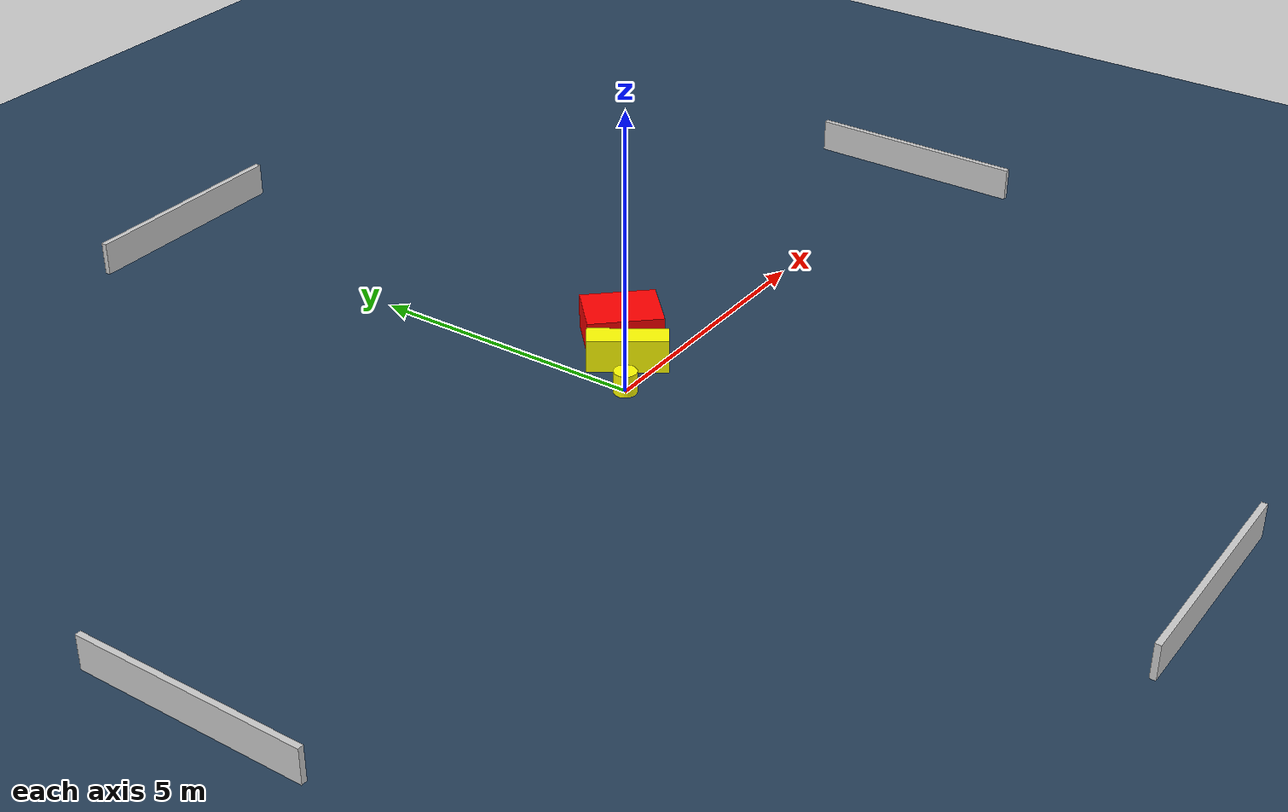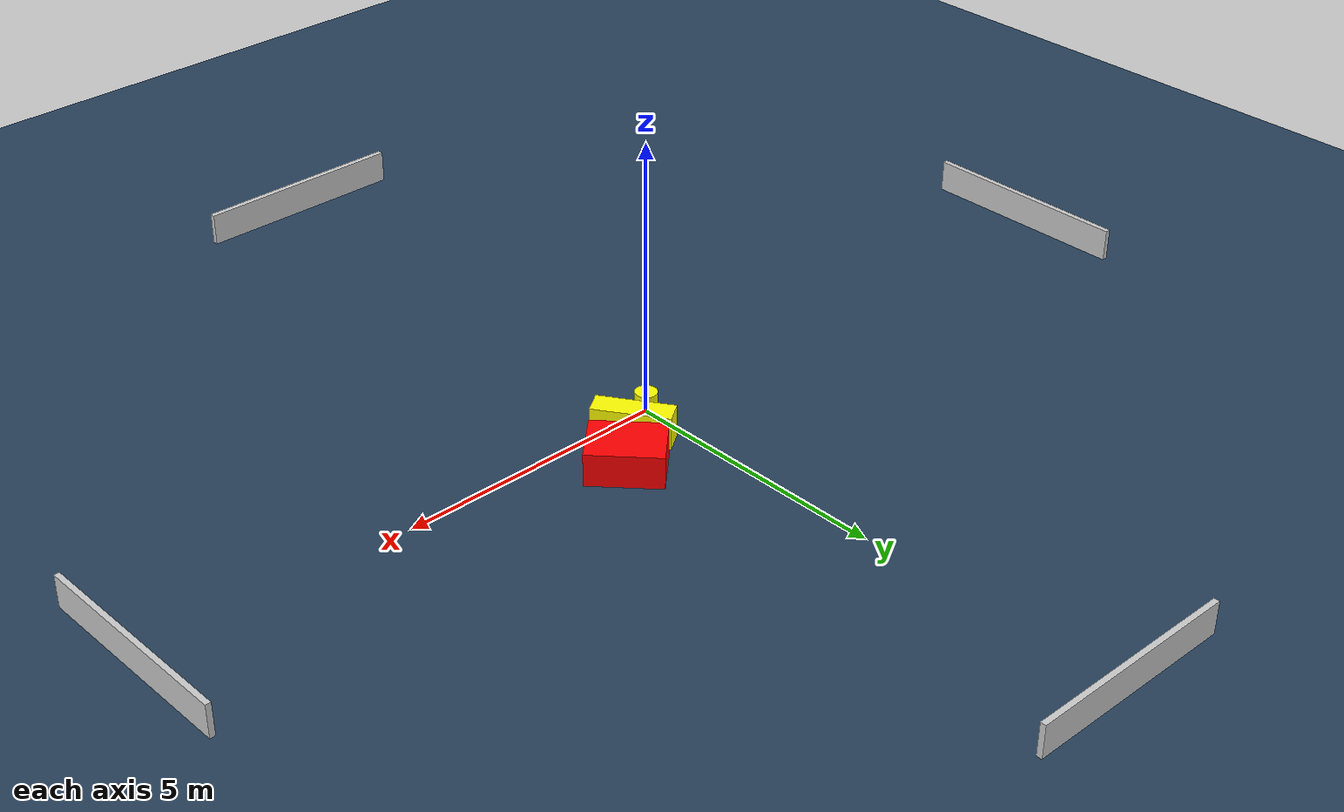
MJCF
<?xml version="1.0" ?>
<mujoco model="generated_environment">
  <option timestep="0.01" integrator="RK4" cone="elliptic"/>
  <default>
    <geom density="1"/>
  </default>
  <asset>
    <texture builtin="gradient" height="3072" name="skybox" rgb1="0.3 0.5 0.7" rgb2="0 0 0" type="skybox" width="512"/>
    <texture builtin="checker" height="300" name="groundplane" rgb1="0.2 0.3 0.4" rgb2="0.1 0.2 0.3" type="2d" width="300"/>
    <material name="groundplane" reflectance="0.2" texrepeat="5 5" texture="groundplane"/>
  </asset>
  <worldbody>
    <light dir="0 0 -1" directional="true" pos="0 0 1.5"/>
    <geom condim="3" friction="0.5 0.005 0.001" material="groundplane" name="floor" pos="0 0 0" size="0 0 0.05" type="plane"/>
    <body name="walls">
      <geom name="wall_1" condim="4" pos="-10.0 0.0 0.3" rgba="0.800000011920929 0.800000011920929 0.800000011920929 1.0" size="0.05 2.0 0.3" type="box"/>
      <geom name="wall_2" condim="4" pos="10.0 0.0 0.3" rgba="0.800000011920929 0.800000011920929 0.800000011920929 1.0" size="0.05 2.0 0.3" type="box"/>
      <geom name="wall_3" condim="4" pos="0.0 -10.0 0.3" rgba="0.800000011920929 0.800000011920929 0.800000011920929 1.0" size="2.0 0.05 0.3" type="box"/>
      <geom name="wall_4" condim="4" pos="0.0 10.0 0.3" rgba="0.800000011920929 0.800000011920929 0.800000011920929 1.0" size="2.0 0.05 0.3" type="box"/>
    </body>
    <body name="robot">
      <joint name="joint_x" type="slide" pos="0 0 0" axis="1 0 0"/>
      <joint name="joint_y" type="slide" pos="0 0 0" axis="0 1 0"/>
      <geom name="robot" type="cylinder" pos="0.0 0.0 0.2" size="0.2 0.2 0.0" mass="5.0" friction="1.0 0.005 0.0001" condim="4" rgba="1.0 1.0 0.0 1.0"/>
    </body>
    <body name="obstacle_1_movable">
      <geom name="obstacle_1_movable" condim="4" pos="0.6990420116458992 0.4382145314537715 0.3" euler="0 0 213.96598844154116" friction="0.0 0.005 0.001" rgba="1.0 1.0 0.0 1.0" size="0.2172458826894506 0.6930410553324542 0.3" type="box" mass="0.1"/>
      <joint type="free"/>
    </body>
    <body name="obstacle_2_static">
      <geom name="obstacle_2_static" condim="4" pos="1.422925744461475 1.0628362515486973 0.3" euler="0 0 223.00821339562748" friction="0.0 0.005 0.001" rgba="1.0 0.0 0.0 1.0" size="0.5149615613083891 0.6626057924047328 0.3" type="box"/>
    </body>
  </worldbody>
  <actuator>
    <motor name="actuator_x" joint="joint_x" gear="1" ctrlrange="-1 1"/>
    <motor name="actuator_y" joint="joint_y" gear="1" ctrlrange="-1 1"/>
  </actuator>
</mujoco>
